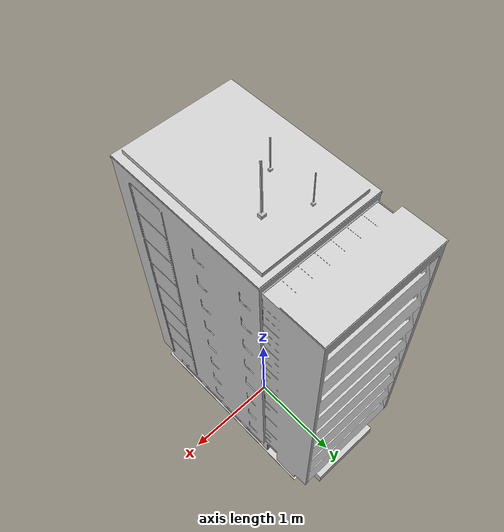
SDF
<?xml version='1.0'?>
<sdf version="1.4">
<model name="res_building_05">
    <static>true</static>
    <pose>0 0 0 0 0 0</pose>
    <link name="link">
      <inertial>
        <mass>10.0</mass>
        <inertia>
          <ixx>0.083</ixx>
          <ixy>0.0</ixy>
          <ixz>0.0</ixz>
          <iyy>0.083</iyy>
          <iyz>0.0</iyz>
          <izz>0.083</izz>
        </inertia>
      </inertial>
      <collision name="collision">
        <geometry>
          <mesh>
            <uri>model://res_building_05/res_building_05.dae</uri>
          </mesh>
        </geometry>
      </collision>
      <visual name="visual">
        <geometry>
          <mesh>
            <uri>model://res_building_05/res_building_05.dae</uri>
          </mesh>
        </geometry>
        <material>
          <script>
            <uri>model://res_building_05/materials/test_texture.material</uri>
            <name>TestTexture</name>
          </script>
        </material>
      </visual>
    </link>
  </model>
</sdf>
